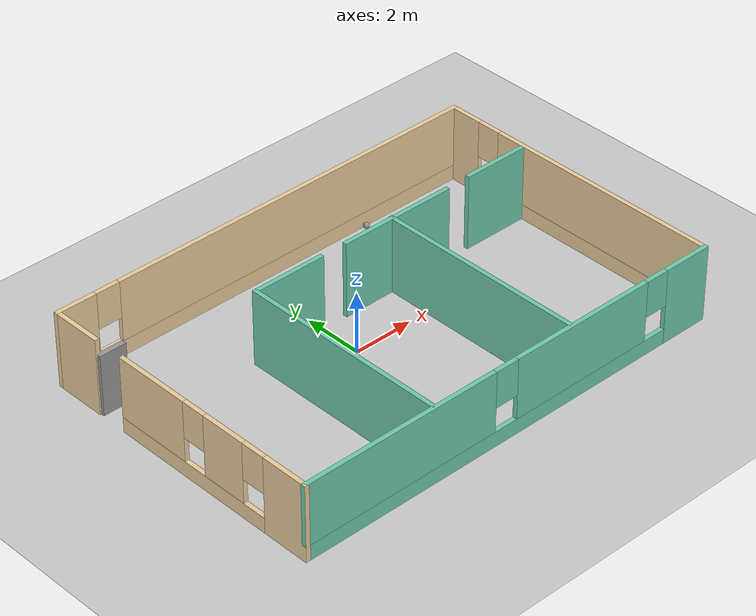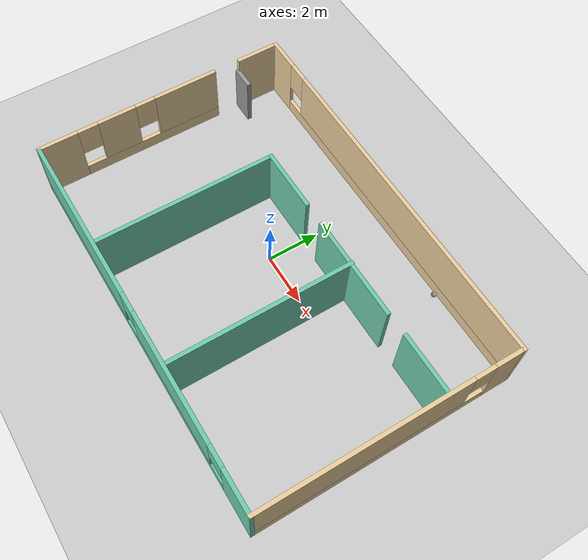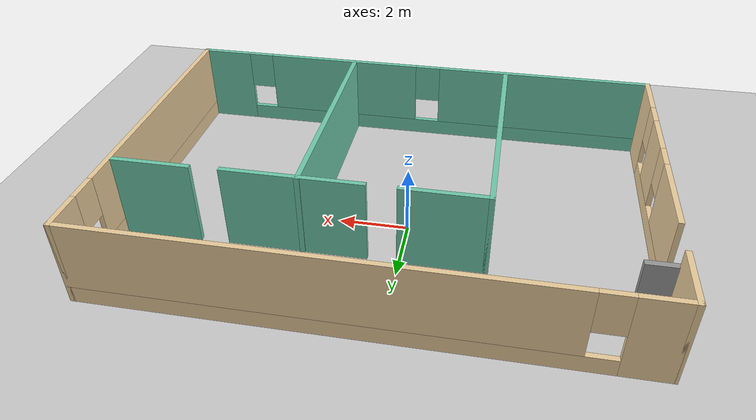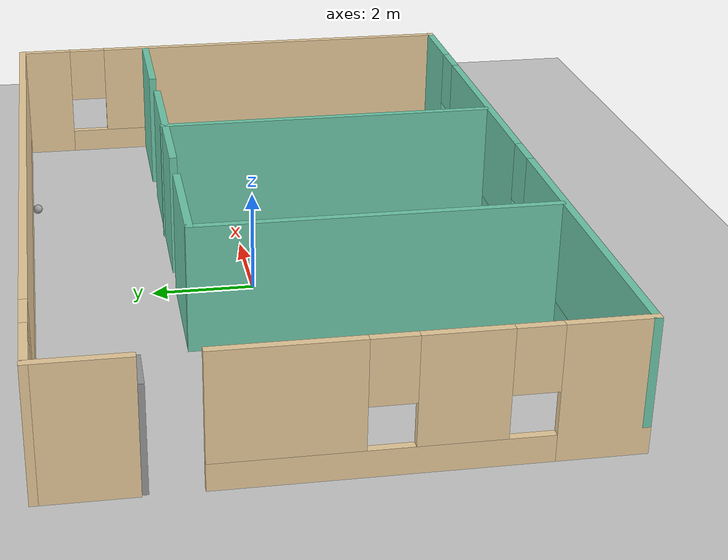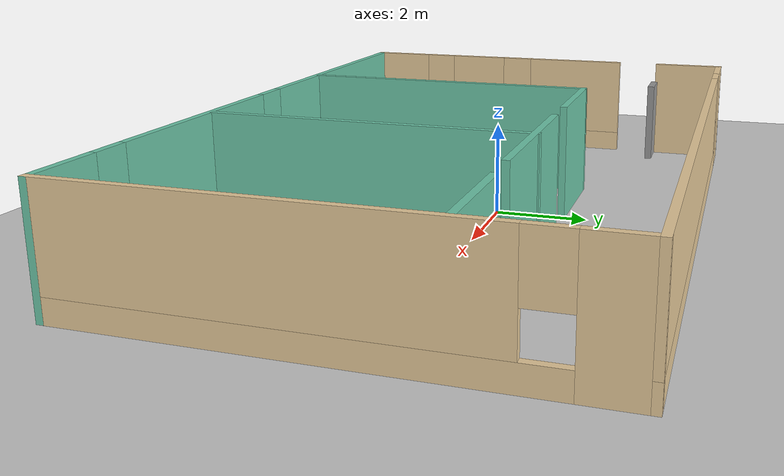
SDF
<sdf version="1.7">
 <world name="default">
  <light name="sun" type="directional">
   <pose>0 0 10 0 -0 0</pose>
   <diffuse>0.8 0.8 0.8 1</diffuse>
   <specular>0.2 0.2 0.2 1</specular>
   <attenuation>
    <range>1000</range>
    <constant>0.9</constant>
    <linear>0.01</linear>
    <quadratic>0.001</quadratic>
   </attenuation>
   <direction>-0.5 0.1 -0.9</direction>
   <spot><inner_angle>0</inner_angle><outer_angle>0</outer_angle><falloff>0</falloff></spot>
  </light>
  <model name="ground_plane">
   <static>1</static>
   <link name="link">
    <collision name="collision">
     <geometry><plane><normal>0 0 1</normal><size>100 100</size></plane></geometry>
     <surface>
      <contact><collide_bitmask>65535</collide_bitmask></contact>
      <friction><ode><mu>100</mu><mu2>50</mu2></ode></friction>
     </surface>
    </collision>
    <visual name="visual">
     <cast_shadows>0</cast_shadows>
     <geometry><plane><normal>0 0 1</normal><size>100 100</size></plane></geometry>
     <material>
      <script><uri>file://media/materials/scripts/gazebo.material</uri><name>Gazebo/Grey</name></script>
     </material>
    </visual>
   </link>
  </model>
  <gravity>0 0 -9.8</gravity>
  <magnetic_field>6e-06 2.3e-05 -4.2e-05</magnetic_field>
  <atmosphere type="adiabatic"/>
  <physics type="ode">
   <max_step_size>0.001</max_step_size>
   <real_time_factor>1</real_time_factor>
   <real_time_update_rate>1000</real_time_update_rate>
  </physics>
  <scene><ambient>0.4 0.4 0.4 1</ambient><background>0.7 0.7 0.7 1</background><shadows>1</shadows></scene>
  <spherical_coordinates>
   <surface_model>EARTH_WGS84</surface_model>
   <latitude_deg>0</latitude_deg>
   <longitude_deg>0</longitude_deg>
   <elevation>0</elevation>
   <heading_deg>0</heading_deg>
  </spherical_coordinates>
  <model name="house">
   <pose>0.57227 -0.55838 0 0 -0 0</pose>
   <link name="Door_2">
    <collision name="Door_2_Collision">
     <geometry><box><size>0.9 0.17 2</size></box></geometry>
     <pose>0 0 1 0 -0 0</pose>
    </collision>
    <visual name="Door_2_Visual">
     <pose>0 0 1 0 -0 0</pose>
     <geometry><box><size>0.9 0.17 2</size></box></geometry>
     <material>
      <script><uri>file://media/materials/scripts/gazebo.material</uri><name>Gazebo/Grey</name></script>
     </material>
    </visual>
    <pose>-7.00327 3.22519 0 0 -0 0</pose>
   </link>
   <link name="Wall_12">
    <collision name="Wall_12_Collision">
     <geometry><box><size>1.75 0.15 2.5</size></box></geometry>
     <pose>0 0 1.25 0 -0 0</pose>
    </collision>
    <visual name="Wall_12_Visual">
     <pose>0 0 1.25 0 -0 0</pose>
     <geometry><box><size>1.75 0.15 2.5</size></box></geometry>
     <material>
      <script><uri>file://media/materials/scripts/gazebo.material</uri><name>Gazebo/Grey</name></script>
      <ambient>0.921569 0.807843 0.615686 1</ambient>
     </material>
     <meta><layer>0</layer></meta>
    </visual>
    <pose>-7.425 4.125 0 0 -0 -1.5708</pose>
   </link>
   <link name="Wall_16">
    <pose>-7.425 -1.375 0 0 -0 1.5708</pose>
    <visual name="Wall_16_Visual_0">
     <pose>-2.83793 0 1.25 0 -0 0</pose>
     <geometry><box><size>1.57415 0.15 2.5</size></box></geometry>
     <material>
      <script><uri>file://media/materials/scripts/gazebo.material</uri><name>Gazebo/Grey</name></script>
      <ambient>0.921569 0.807843 0.615686 1</ambient>
     </material>
     <meta><layer>0</layer></meta>
    </visual>
    <collision name="Wall_16_Collision_0">
     <geometry><box><size>1.57415 0.15 2.5</size></box></geometry>
     <pose>-2.83793 0 1.25 0 -0 0</pose>
    </collision>
    <visual name="Wall_16_Visual_1">
     <pose>0.787074 0 0.25 0 -0 0</pose>
     <geometry><box><size>5.67585 0.15 0.5</size></box></geometry>
     <material>
      <script><uri>file://media/materials/scripts/gazebo.material</uri><name>Gazebo/Grey</name></script>
      <ambient>0.921569 0.807843 0.615686 1</ambient>
     </material>
     <meta><layer>0</layer></meta>
    </visual>
    <collision name="Wall_16_Collision_1">
     <geometry><box><size>5.67585 0.15 0.5</size></box></geometry>
     <pose>0.787074 0 0.25 0 -0 0</pose>
    </collision>
    <visual name="Wall_16_Visual_2">
     <pose>-0.493743 0 1.5 0 -0 0</pose>
     <geometry><box><size>1.51422 0.15 2</size></box></geometry>
     <material>
      <script><uri>file://media/materials/scripts/gazebo.material</uri><name>Gazebo/Grey</name></script>
      <ambient>0.921569 0.807843 0.615686 1</ambient>
     </material>
     <meta><layer>0</layer></meta>
    </visual>
    <collision name="Wall_16_Collision_2">
     <geometry><box><size>1.51422 0.15 2</size></box></geometry>
     <pose>-0.493743 0 1.5 0 -0 0</pose>
    </collision>
    <visual name="Wall_16_Visual_3">
     <pose>2.34418 0 1.5 0 -0 0</pose>
     <geometry><box><size>2.56163 0.15 2</size></box></geometry>
     <material>
      <script><uri>file://media/materials/scripts/gazebo.material</uri><name>Gazebo/Grey</name></script>
      <ambient>0.921569 0.807843 0.615686 1</ambient>
     </material>
     <meta><layer>0</layer></meta>
    </visual>
    <collision name="Wall_16_Collision_3">
     <geometry><box><size>2.56163 0.15 2</size></box></geometry>
     <pose>2.34418 0 1.5 0 -0 0</pose>
    </collision>
    <visual name="Wall_16_Visual_4">
     <pose>-1.65085 0 1.9 0 -0 0</pose>
     <geometry><box><size>0.8 0.15 1.2</size></box></geometry>
     <material>
      <script><uri>file://media/materials/scripts/gazebo.material</uri><name>Gazebo/Grey</name></script>
      <ambient>0.921569 0.807843 0.615686 1</ambient>
     </material>
     <meta><layer>0</layer></meta>
    </visual>
    <collision name="Wall_16_Collision_4">
     <geometry><box><size>0.8 0.15 1.2</size></box></geometry>
     <pose>-1.65085 0 1.9 0 -0 0</pose>
    </collision>
    <visual name="Wall_16_Visual_5">
     <pose>0.663365 0 1.9 0 -0 0</pose>
     <geometry><box><size>0.8 0.15 1.2</size></box></geometry>
     <material>
      <script><uri>file://media/materials/scripts/gazebo.material</uri><name>Gazebo/Grey</name></script>
      <ambient>0.921569 0.807843 0.615686 1</ambient>
     </material>
     <meta><layer>0</layer></meta>
    </visual>
    <collision name="Wall_16_Collision_5">
     <geometry><box><size>0.8 0.15 1.2</size></box></geometry>
     <pose>0.663365 0 1.9 0 -0 0</pose>
    </collision>
   </link>
   <link name="Wall_19">
    <collision name="Wall_19_Collision">
     <geometry><box><size>7 0.15 2.5</size></box></geometry>
     <pose>0 0 1.25 0 -0 0</pose>
    </collision>
    <visual name="Wall_19_Visual">
     <pose>0 0 1.25 0 -0 0</pose>
     <geometry><box><size>7 0.15 2.5</size></box></geometry>
     <material>
      <script><uri>file://media/materials/scripts/gazebo.material</uri><name>Gazebo/Grey</name></script>
      <ambient>0.435294 0.796078 0.67451 1</ambient>
     </material>
     <meta><layer>0</layer></meta>
    </visual>
    <pose>-2.93344 -1.40967 0 0 -0 1.5708</pose>
   </link>
   <link name="Wall_23">
    <collision name="Wall_23_Collision">
     <geometry><box><size>2.5 0.15 2.5</size></box></geometry>
     <pose>0 0 1.25 0 -0 0</pose>
    </collision>
    <visual name="Wall_23_Visual">
     <pose>0 0 1.25 0 -0 0</pose>
     <geometry><box><size>2.5 0.15 2.5</size></box></geometry>
     <material>
      <script><uri>file://media/materials/scripts/gazebo.material</uri><name>Gazebo/Grey</name></script>
      <ambient>0.435294 0.796078 0.67451 1</ambient>
     </material>
     <meta><layer>0</layer></meta>
    </visual>
    <pose>-1.75844 2.01533 0 0 -0 0</pose>
   </link>
   <link name="Wall_26">
    <collision name="Wall_26_Collision">
     <geometry><box><size>4 0.15 2.5</size></box></geometry>
     <pose>0 0 1.25 0 -0 0</pose>
    </collision>
    <visual name="Wall_26_Visual">
     <pose>0 0 1.25 0 -0 0</pose>
     <geometry><box><size>4 0.15 2.5</size></box></geometry>
     <material>
      <script><uri>file://media/materials/scripts/gazebo.material</uri><name>Gazebo/Grey</name></script>
      <ambient>0.435294 0.796078 0.67451 1</ambient>
     </material>
     <meta><layer>0</layer></meta>
    </visual>
    <pose>2.30881 2.00469 0 0 -0 0</pose>
   </link>
   <link name="Wall_28">
    <collision name="Wall_28_Collision">
     <geometry><box><size>2.25 0.15 2.5</size></box></geometry>
     <pose>0 0 1.25 0 -0 0</pose>
    </collision>
    <visual name="Wall_28_Visual">
     <pose>0 0 1.25 0 -0 0</pose>
     <geometry><box><size>2.25 0.15 2.5</size></box></geometry>
     <material>
      <script><uri>file://media/materials/scripts/gazebo.material</uri><name>Gazebo/Grey</name></script>
      <ambient>0.435294 0.796078 0.67451 1</ambient>
     </material>
     <meta><layer>0</layer></meta>
    </visual>
    <pose>6.23184 2.04089 0 0 -0 0</pose>
   </link>
   <link name="Wall_30">
    <collision name="Wall_30_Collision">
     <geometry><box><size>7 0.15 2.5</size></box></geometry>
     <pose>0 0 1.25 0 -0 0</pose>
    </collision>
    <visual name="Wall_30_Visual">
     <pose>0 0 1.25 0 -0 0</pose>
     <geometry><box><size>7 0.15 2.5</size></box></geometry>
     <material>
      <script><uri>file://media/materials/scripts/gazebo.material</uri><name>Gazebo/Grey</name></script>
      <ambient>0.435294 0.796078 0.67451 1</ambient>
     </material>
     <meta><layer>0</layer></meta>
    </visual>
    <pose>2.13918 -1.3895 0 0 -0 -1.5708</pose>
   </link>
   <link name="Wall_7">
    <pose>0 4.925 0 0 -0 0</pose>
    <visual name="Wall_7_Visual_0">
     <pose>-6.82653 0 1.25 0 -0 0</pose>
     <geometry><box><size>1.34694 0.15 2.5</size></box></geometry>
     <material>
      <script><uri>file://media/materials/scripts/gazebo.material</uri><name>Gazebo/Grey</name></script>
      <ambient>0.921569 0.807843 0.615686 1</ambient>
     </material>
     <meta><layer>0</layer></meta>
    </visual>
    <collision name="Wall_7_Collision_0">
     <geometry><box><size>1.34694 0.15 2.5</size></box></geometry>
     <pose>-6.82653 0 1.25 0 -0 0</pose>
    </collision>
    <visual name="Wall_7_Visual_1">
     <pose>0.67347 0 0.25 0 -0 0</pose>
     <geometry><box><size>13.6531 0.15 0.5</size></box></geometry>
     <material>
      <script><uri>file://media/materials/scripts/gazebo.material</uri><name>Gazebo/Grey</name></script>
      <ambient>0.921569 0.807843 0.615686 1</ambient>
     </material>
     <meta><layer>0</layer></meta>
    </visual>
    <collision name="Wall_7_Collision_1">
     <geometry><box><size>13.6531 0.15 0.5</size></box></geometry>
     <pose>0.67347 0 0.25 0 -0 0</pose>
    </collision>
    <visual name="Wall_7_Visual_2">
     <pose>1.07347 0 1.5 0 -0 0</pose>
     <geometry><box><size>12.8531 0.15 2</size></box></geometry>
     <material>
      <script><uri>file://media/materials/scripts/gazebo.material</uri><name>Gazebo/Grey</name></script>
      <ambient>0.921569 0.807843 0.615686 1</ambient>
     </material>
     <meta><layer>0</layer></meta>
    </visual>
    <collision name="Wall_7_Collision_2">
     <geometry><box><size>12.8531 0.15 2</size></box></geometry>
     <pose>1.07347 0 1.5 0 -0 0</pose>
    </collision>
    <visual name="Wall_7_Visual_3">
     <pose>-5.75306 0 1.9 0 -0 0</pose>
     <geometry><box><size>0.8 0.15 1.2</size></box></geometry>
     <material>
      <script><uri>file://media/materials/scripts/gazebo.material</uri><name>Gazebo/Grey</name></script>
      <ambient>0.921569 0.807843 0.615686 1</ambient>
     </material>
     <meta><layer>0</layer></meta>
    </visual>
    <collision name="Wall_7_Collision_3">
     <geometry><box><size>0.8 0.15 1.2</size></box></geometry>
     <pose>-5.75306 0 1.9 0 -0 0</pose>
    </collision>
   </link>
   <link name="Wall_8">
    <pose>7.425 0 0 0 -0 -1.5708</pose>
    <visual name="Wall_8_Visual_0">
     <pose>-4.41167 0 1.25 0 -0 0</pose>
     <geometry><box><size>1.17666 0.15 2.5</size></box></geometry>
     <material>
      <script><uri>file://media/materials/scripts/gazebo.material</uri><name>Gazebo/Grey</name></script>
      <ambient>0.921569 0.807843 0.615686 1</ambient>
     </material>
     <meta><layer>0</layer></meta>
    </visual>
    <collision name="Wall_8_Collision_0">
     <geometry><box><size>1.17666 0.15 2.5</size></box></geometry>
     <pose>-4.41167 0 1.25 0 -0 0</pose>
    </collision>
    <visual name="Wall_8_Visual_1">
     <pose>0.588331 0 0.25 0 -0 0</pose>
     <geometry><box><size>8.82334 0.15 0.5</size></box></geometry>
     <material>
      <script><uri>file://media/materials/scripts/gazebo.material</uri><name>Gazebo/Grey</name></script>
      <ambient>0.921569 0.807843 0.615686 1</ambient>
     </material>
     <meta><layer>0</layer></meta>
    </visual>
    <collision name="Wall_8_Collision_1">
     <geometry><box><size>8.82334 0.15 0.5</size></box></geometry>
     <pose>0.588331 0 0.25 0 -0 0</pose>
    </collision>
    <visual name="Wall_8_Visual_2">
     <pose>0.988331 0 1.5 0 -0 0</pose>
     <geometry><box><size>8.02334 0.15 2</size></box></geometry>
     <material>
      <script><uri>file://media/materials/scripts/gazebo.material</uri><name>Gazebo/Grey</name></script>
      <ambient>0.921569 0.807843 0.615686 1</ambient>
     </material>
     <meta><layer>0</layer></meta>
    </visual>
    <collision name="Wall_8_Collision_2">
     <geometry><box><size>8.02334 0.15 2</size></box></geometry>
     <pose>0.988331 0 1.5 0 -0 0</pose>
    </collision>
    <visual name="Wall_8_Visual_3">
     <pose>-3.42334 0 1.9 0 -0 0</pose>
     <geometry><box><size>0.8 0.15 1.2</size></box></geometry>
     <material>
      <script><uri>file://media/materials/scripts/gazebo.material</uri><name>Gazebo/Grey</name></script>
      <ambient>0.921569 0.807843 0.615686 1</ambient>
     </material>
     <meta><layer>0</layer></meta>
    </visual>
    <collision name="Wall_8_Collision_3">
     <geometry><box><size>0.8 0.15 1.2</size></box></geometry>
     <pose>-3.42334 0 1.9 0 -0 0</pose>
    </collision>
   </link>
   <link name="Wall_9">
    <pose>0 -4.925 0 0 -0 3.14159</pose>
    <visual name="Wall_9_Visual_0">
     <pose>-6.66957 0 1.25 0 -0 0</pose>
     <geometry><box><size>1.66085 0.15 2.5</size></box></geometry>
     <material>
      <script><uri>file://media/materials/scripts/gazebo.material</uri><name>Gazebo/Grey</name></script>
      <ambient>0.435294 0.796078 0.67451 1</ambient>
     </material>
     <meta><layer>0</layer></meta>
    </visual>
    <collision name="Wall_9_Collision_0">
     <geometry><box><size>1.66085 0.15 2.5</size></box></geometry>
     <pose>-6.66957 0 1.25 0 -0 0</pose>
    </collision>
    <visual name="Wall_9_Visual_1">
     <pose>0.830427 0 0.25 0 -0 0</pose>
     <geometry><box><size>13.3391 0.15 0.5</size></box></geometry>
     <material>
      <script><uri>file://media/materials/scripts/gazebo.material</uri><name>Gazebo/Grey</name></script>
      <ambient>0.435294 0.796078 0.67451 1</ambient>
     </material>
     <meta><layer>0</layer></meta>
    </visual>
    <collision name="Wall_9_Collision_1">
     <geometry><box><size>13.3391 0.15 0.5</size></box></geometry>
     <pose>0.830427 0 0.25 0 -0 0</pose>
    </collision>
    <visual name="Wall_9_Visual_2">
     <pose>-2.54011 0 1.5 0 -0 0</pose>
     <geometry><box><size>4.99807 0.15 2</size></box></geometry>
     <material>
      <script><uri>file://media/materials/scripts/gazebo.material</uri><name>Gazebo/Grey</name></script>
      <ambient>0.435294 0.796078 0.67451 1</ambient>
     </material>
     <meta><layer>0</layer></meta>
    </visual>
    <collision name="Wall_9_Collision_2">
     <geometry><box><size>4.99807 0.15 2</size></box></geometry>
     <pose>-2.54011 0 1.5 0 -0 0</pose>
    </collision>
    <visual name="Wall_9_Visual_3">
     <pose>4.12946 0 1.5 0 -0 0</pose>
     <geometry><box><size>6.74107 0.15 2</size></box></geometry>
     <material>
      <script><uri>file://media/materials/scripts/gazebo.material</uri><name>Gazebo/Grey</name></script>
      <ambient>0.435294 0.796078 0.67451 1</ambient>
     </material>
     <meta><layer>0</layer></meta>
    </visual>
    <collision name="Wall_9_Collision_3">
     <geometry><box><size>6.74107 0.15 2</size></box></geometry>
     <pose>4.12946 0 1.5 0 -0 0</pose>
    </collision>
    <visual name="Wall_9_Visual_4">
     <pose>-5.43915 0 1.9 0 -0 0</pose>
     <geometry><box><size>0.8 0.15 1.2</size></box></geometry>
     <material>
      <script><uri>file://media/materials/scripts/gazebo.material</uri><name>Gazebo/Grey</name></script>
      <ambient>0.435294 0.796078 0.67451 1</ambient>
     </material>
     <meta><layer>0</layer></meta>
    </visual>
    <collision name="Wall_9_Collision_4">
     <geometry><box><size>0.8 0.15 1.2</size></box></geometry>
     <pose>-5.43915 0 1.9 0 -0 0</pose>
    </collision>
    <visual name="Wall_9_Visual_5">
     <pose>0.358926 0 1.9 0 -0 0</pose>
     <geometry><box><size>0.8 0.15 1.2</size></box></geometry>
     <material>
      <script><uri>file://media/materials/scripts/gazebo.material</uri><name>Gazebo/Grey</name></script>
      <ambient>0.435294 0.796078 0.67451 1</ambient>
     </material>
     <meta><layer>0</layer></meta>
    </visual>
    <collision name="Wall_9_Collision_5">
     <geometry><box><size>0.8 0.15 1.2</size></box></geometry>
     <pose>0.358926 0 1.9 0 -0 0</pose>
    </collision>
   </link>
   <static>1</static>
  </model>
  <model name="white_ball">
   <link name="link_0">
    <inertial>
     <mass>1</mass>
     <inertia><ixx>0.1</ixx><ixy>0</ixy><ixz>0</ixz><iyy>0.1</iyy><iyz>0</iyz><izz>0.1</izz></inertia>
    </inertial>
    <visual name="visual">
     <geometry><sphere><radius>0.1</radius></sphere></geometry>
     <material>
      <lighting>1</lighting>
      <script><uri>file://media/materials/scripts/gazebo.material</uri><name>Gazebo/Grey</name></script>
      <shader type="pixel"><normal_map>__default__</normal_map></shader>
      <ambient>1 1 1 1</ambient>
      <diffuse>1 1 1 1</diffuse>
      <specular>1 1 1 1</specular>
      <emissive>1 1 1 1</emissive>
     </material>
    </visual>
    <collision name="collision">
     <geometry><sphere><radius>0.1</radius></sphere></geometry>
     <surface>
      <friction>
       <ode><mu>1</mu><mu2>1</mu2><fdir1>0 0 0</fdir1><slip1>0</slip1><slip2>0</slip2></ode>
       <torsional>
        <coefficient>1</coefficient>
        <patch_radius>0</patch_radius>
        <surface_radius>0</surface_radius>
        <use_patch_radius>1</use_patch_radius>
        <ode><slip>0</slip></ode>
       </torsional>
      </friction>
      <bounce><restitution_coefficient>0</restitution_coefficient><threshold>1e+06</threshold></bounce>
      <contact>
       <collide_without_contact>0</collide_without_contact>
       <collide_without_contact_bitmask>1</collide_without_contact_bitmask>
       <collide_bitmask>1</collide_bitmask>
       <ode>
        <soft_cfm>0</soft_cfm>
        <soft_erp>0.2</soft_erp>
        <kp>1e+13</kp>
        <kd>1</kd>
        <max_vel>0.01</max_vel>
        <min_depth>0</min_depth>
       </ode>
       <bullet>
        <split_impulse>1</split_impulse>
        <split_impulse_penetration_threshold>-0.01</split_impulse_penetration_threshold>
        <soft_cfm>0</soft_cfm>
        <soft_erp>0.2</soft_erp>
        <kp>1e+13</kp>
        <kd>1</kd>
       </bullet>
      </contact>
     </surface>
    </collision>
   </link>
   <static>0</static>
   <pose>4.26593 4.1915 0.1 -2.53846 -0.325939 1.72273</pose>
  </model>
 </world>
</sdf>
